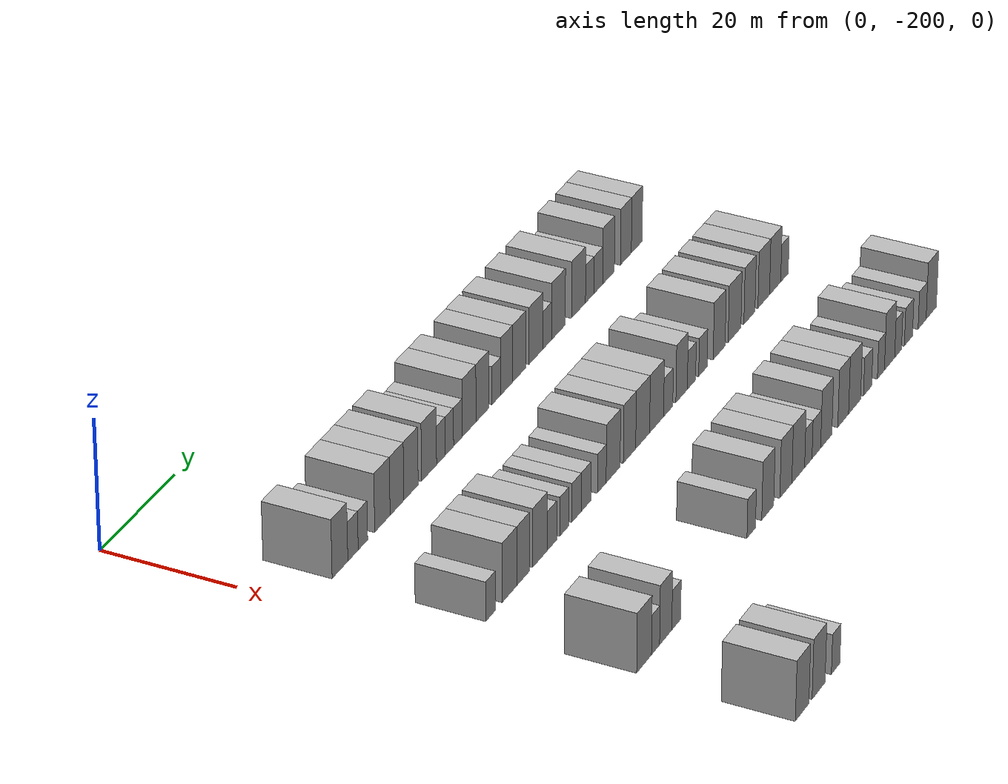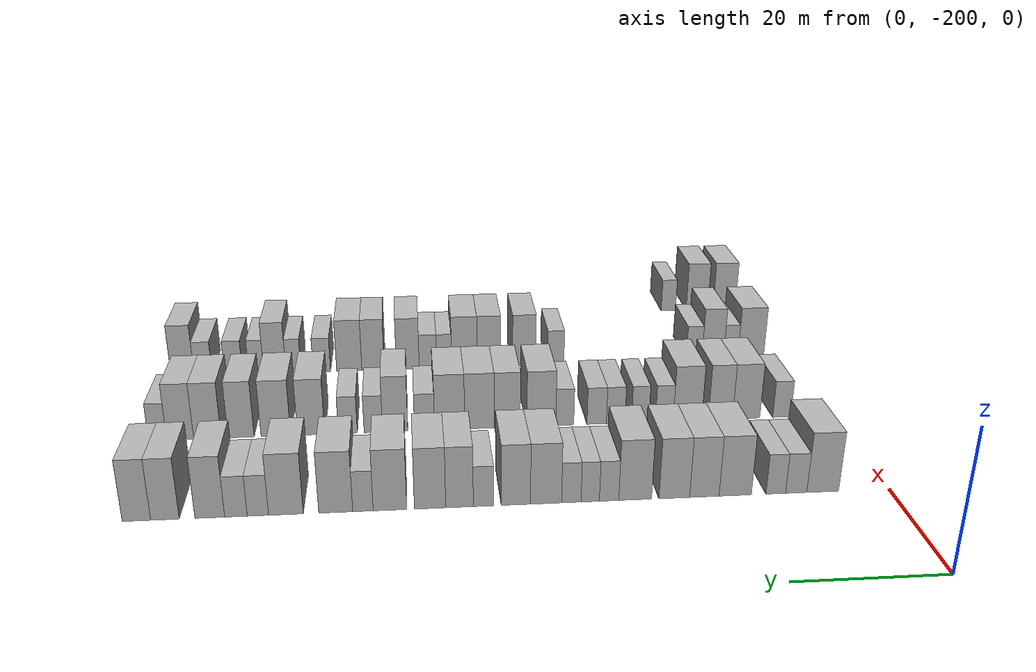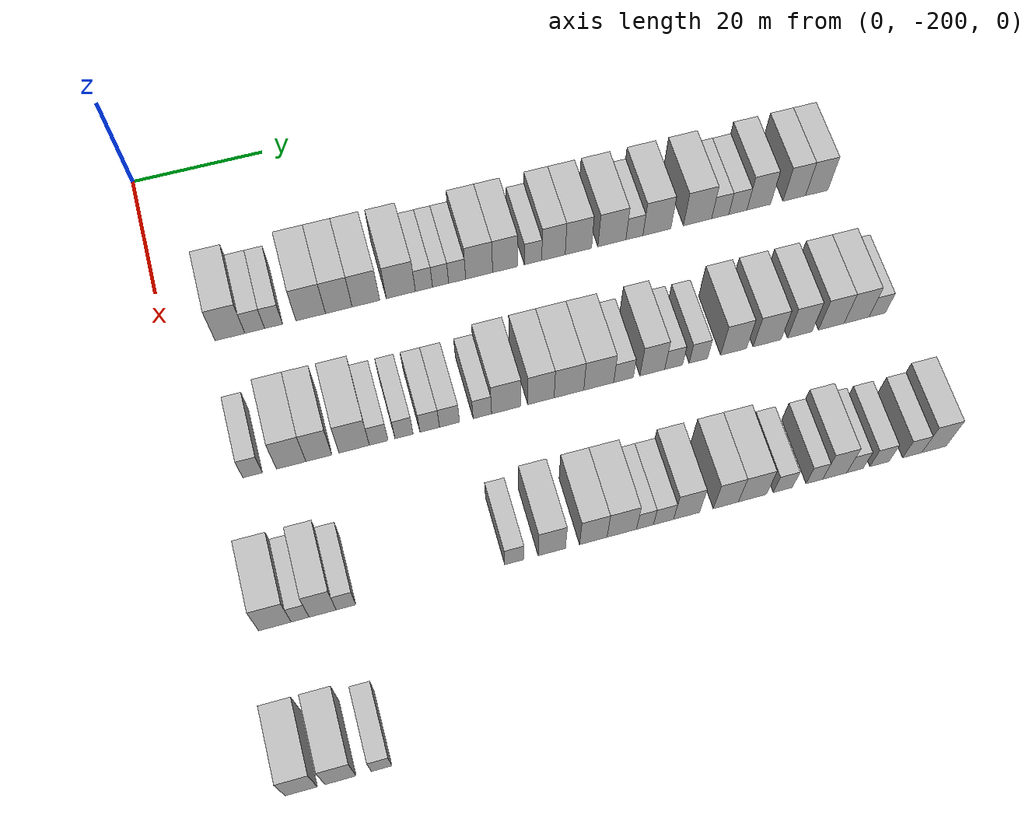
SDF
<sdf version="1.6">
 <world name="default">
  <model name="building_46">
   <static>1</static>
   <pose>25.0000 -190.7838 0 0.000000 0.000000 0.000000</pose>
   <link name="link">
    <pose>0 0 4.50 0 0 0</pose>
    <collision name="collision"><geometry><box><size>10.0000 4.3955 9.0000</size></box></geometry></collision>
    <visual name="visual">
     <cast_shadows>0</cast_shadows>
     <geometry><box><size>10.0000 4.3955 9.0000</size></box></geometry>
     <material>
      <script>
       <uri>model://HANNAS_wall/materials/scripts</uri>
       <uri>model://HANNAS_wall/materials/textures</uri>
       <name>vrc/HANNAS_wall</name>
      </script>
     </material>
    </visual>
   </link>
  </model>
  <model name="building_47">
   <static>1</static>
   <pose>25.0000 -187.1264 0 0.000000 0.000000 0.000000</pose>
   <link name="link">
    <pose>0 0 3.00 0 0 0</pose>
    <collision name="collision"><geometry><box><size>10.0000 2.9193 6.0000</size></box></geometry></collision>
    <visual name="visual">
     <cast_shadows>0</cast_shadows>
     <geometry><box><size>10.0000 2.9193 6.0000</size></box></geometry>
     <material>
      <script>
       <uri>model://HANNAS_wall/materials/scripts</uri>
       <uri>model://HANNAS_wall/materials/textures</uri>
       <name>vrc/HANNAS_wall</name>
      </script>
     </material>
    </visual>
   </link>
  </model>
  <model name="building_48">
   <static>1</static>
   <pose>25.0000 -184.3268 0 0.000000 0.000000 0.000000</pose>
   <link name="link">
    <pose>0 0 3.00 0 0 0</pose>
    <collision name="collision"><geometry><box><size>10.0000 2.6798 6.0000</size></box></geometry></collision>
    <visual name="visual">
     <cast_shadows>0</cast_shadows>
     <geometry><box><size>10.0000 2.6798 6.0000</size></box></geometry>
     <material>
      <script>
       <uri>model://HANNAS_wall/materials/scripts</uri>
       <uri>model://HANNAS_wall/materials/textures</uri>
       <name>vrc/HANNAS_wall</name>
      </script>
     </material>
    </visual>
   </link>
  </model>
  <model name="building_49">
   <static>1</static>
   <pose>25.0000 -178.7827 0 0.000000 0.000000 0.000000</pose>
   <link name="link">
    <pose>0 0 4.50 0 0 0</pose>
    <collision name="collision"><geometry><box><size>10.0000 4.4084 9.0000</size></box></geometry></collision>
    <visual name="visual">
     <cast_shadows>0</cast_shadows>
     <geometry><box><size>10.0000 4.4084 9.0000</size></box></geometry>
     <material>
      <script>
       <uri>model://HANNAS_wall/materials/scripts</uri>
       <uri>model://HANNAS_wall/materials/textures</uri>
       <name>vrc/HANNAS_wall</name>
      </script>
     </material>
    </visual>
   </link>
  </model>
  <model name="building_50">
   <static>1</static>
   <pose>25.0000 -174.5790 0 0.000000 0.000000 0.000000</pose>
   <link name="link">
    <pose>0 0 4.50 0 0 0</pose>
    <collision name="collision"><geometry><box><size>10.0000 3.9990 9.0000</size></box></geometry></collision>
    <visual name="visual">
     <cast_shadows>0</cast_shadows>
     <geometry><box><size>10.0000 3.9990 9.0000</size></box></geometry>
     <material>
      <script>
       <uri>model://HANNAS_wall/materials/scripts</uri>
       <uri>model://HANNAS_wall/materials/textures</uri>
       <name>vrc/HANNAS_wall</name>
      </script>
     </material>
    </visual>
   </link>
  </model>
  <model name="building_51">
   <static>1</static>
   <pose>25.0000 -170.5038 0 0.000000 0.000000 0.000000</pose>
   <link name="link">
    <pose>0 0 4.50 0 0 0</pose>
    <collision name="collision"><geometry><box><size>10.0000 4.1513 9.0000</size></box></geometry></collision>
    <visual name="visual">
     <cast_shadows>0</cast_shadows>
     <geometry><box><size>10.0000 4.1513 9.0000</size></box></geometry>
     <material>
      <script>
       <uri>model://HANNAS_wall/materials/scripts</uri>
       <uri>model://HANNAS_wall/materials/textures</uri>
       <name>vrc/HANNAS_wall</name>
      </script>
     </material>
    </visual>
   </link>
  </model>
  <model name="building_52">
   <static>1</static>
   <pose>25.0000 -165.2198 0 0.000000 0.000000 0.000000</pose>
   <link name="link">
    <pose>0 0 4.50 0 0 0</pose>
    <collision name="collision"><geometry><box><size>10.0000 4.4166 9.0000</size></box></geometry></collision>
    <visual name="visual">
     <cast_shadows>0</cast_shadows>
     <geometry><box><size>10.0000 4.4166 9.0000</size></box></geometry>
     <material>
      <script>
       <uri>model://HANNAS_wall/materials/scripts</uri>
       <uri>model://HANNAS_wall/materials/textures</uri>
       <name>vrc/HANNAS_wall</name>
      </script>
     </material>
    </visual>
   </link>
  </model>
  <model name="building_53">
   <static>1</static>
   <pose>25.0000 -161.7086 0 0.000000 0.000000 0.000000</pose>
   <link name="link">
    <pose>0 0 3.00 0 0 0</pose>
    <collision name="collision"><geometry><box><size>10.0000 2.6059 6.0000</size></box></geometry></collision>
    <visual name="visual">
     <cast_shadows>0</cast_shadows>
     <geometry><box><size>10.0000 2.6059 6.0000</size></box></geometry>
     <material>
      <script>
       <uri>model://HANNAS_wall/materials/scripts</uri>
       <uri>model://HANNAS_wall/materials/textures</uri>
       <name>vrc/HANNAS_wall</name>
      </script>
     </material>
    </visual>
   </link>
  </model>
  <model name="building_54">
   <static>1</static>
   <pose>25.0000 -159.1766 0 0.000000 0.000000 0.000000</pose>
   <link name="link">
    <pose>0 0 3.00 0 0 0</pose>
    <collision name="collision"><geometry><box><size>10.0000 2.4581 6.0000</size></box></geometry></collision>
    <visual name="visual">
     <cast_shadows>0</cast_shadows>
     <geometry><box><size>10.0000 2.4581 6.0000</size></box></geometry>
     <material>
      <script>
       <uri>model://HANNAS_wall/materials/scripts</uri>
       <uri>model://HANNAS_wall/materials/textures</uri>
       <name>vrc/HANNAS_wall</name>
      </script>
     </material>
    </visual>
   </link>
  </model>
  <model name="building_55">
   <static>1</static>
   <pose>25.0000 -156.6405 0 0.000000 0.000000 0.000000</pose>
   <link name="link">
    <pose>0 0 3.00 0 0 0</pose>
    <collision name="collision"><geometry><box><size>10.0000 2.6142 6.0000</size></box></geometry></collision>
    <visual name="visual">
     <cast_shadows>0</cast_shadows>
     <geometry><box><size>10.0000 2.6142 6.0000</size></box></geometry>
     <material>
      <script>
       <uri>model://HANNAS_wall/materials/scripts</uri>
       <uri>model://HANNAS_wall/materials/textures</uri>
       <name>vrc/HANNAS_wall</name>
      </script>
     </material>
    </visual>
   </link>
  </model>
  <model name="building_56">
   <static>1</static>
   <pose>25.0000 -153.2643 0 0.000000 0.000000 0.000000</pose>
   <link name="link">
    <pose>0 0 4.50 0 0 0</pose>
    <collision name="collision"><geometry><box><size>10.0000 4.1381 9.0000</size></box></geometry></collision>
    <visual name="visual">
     <cast_shadows>0</cast_shadows>
     <geometry><box><size>10.0000 4.1381 9.0000</size></box></geometry>
     <material>
      <script>
       <uri>model://HANNAS_wall/materials/scripts</uri>
       <uri>model://HANNAS_wall/materials/textures</uri>
       <name>vrc/HANNAS_wall</name>
      </script>
     </material>
    </visual>
   </link>
  </model>
  <model name="building_57">
   <static>1</static>
   <pose>25.0000 -149.2630 0 0.000000 0.000000 0.000000</pose>
   <link name="link">
    <pose>0 0 4.50 0 0 0</pose>
    <collision name="collision"><geometry><box><size>10.0000 3.8646 9.0000</size></box></geometry></collision>
    <visual name="visual">
     <cast_shadows>0</cast_shadows>
     <geometry><box><size>10.0000 3.8646 9.0000</size></box></geometry>
     <material>
      <script>
       <uri>model://HANNAS_wall/materials/scripts</uri>
       <uri>model://HANNAS_wall/materials/textures</uri>
       <name>vrc/HANNAS_wall</name>
      </script>
     </material>
    </visual>
   </link>
  </model>
  <model name="building_58">
   <static>1</static>
   <pose>25.0000 -144.9823 0 0.000000 0.000000 0.000000</pose>
   <link name="link">
    <pose>0 0 3.00 0 0 0</pose>
    <collision name="collision"><geometry><box><size>10.0000 2.6967 6.0000</size></box></geometry></collision>
    <visual name="visual">
     <cast_shadows>0</cast_shadows>
     <geometry><box><size>10.0000 2.6967 6.0000</size></box></geometry>
     <material>
      <script>
       <uri>model://HANNAS_wall/materials/scripts</uri>
       <uri>model://HANNAS_wall/materials/textures</uri>
       <name>vrc/HANNAS_wall</name>
      </script>
     </material>
    </visual>
   </link>
  </model>
  <model name="building_59">
   <static>1</static>
   <pose>25.0000 -141.8142 0 0.000000 0.000000 0.000000</pose>
   <link name="link">
    <pose>0 0 4.50 0 0 0</pose>
    <collision name="collision"><geometry><box><size>10.0000 3.6396 9.0000</size></box></geometry></collision>
    <visual name="visual">
     <cast_shadows>0</cast_shadows>
     <geometry><box><size>10.0000 3.6396 9.0000</size></box></geometry>
     <material>
      <script>
       <uri>model://HANNAS_wall/materials/scripts</uri>
       <uri>model://HANNAS_wall/materials/textures</uri>
       <name>vrc/HANNAS_wall</name>
      </script>
     </material>
    </visual>
   </link>
  </model>
  <model name="building_60">
   <static>1</static>
   <pose>25.0000 -137.9425 0 0.000000 0.000000 0.000000</pose>
   <link name="link">
    <pose>0 0 4.50 0 0 0</pose>
    <collision name="collision"><geometry><box><size>10.0000 4.1037 9.0000</size></box></geometry></collision>
    <visual name="visual">
     <cast_shadows>0</cast_shadows>
     <geometry><box><size>10.0000 4.1037 9.0000</size></box></geometry>
     <material>
      <script>
       <uri>model://HANNAS_wall/materials/scripts</uri>
       <uri>model://HANNAS_wall/materials/textures</uri>
       <name>vrc/HANNAS_wall</name>
      </script>
     </material>
    </visual>
   </link>
  </model>
  <model name="building_61">
   <static>1</static>
   <pose>25.0000 -132.6984 0 0.000000 0.000000 0.000000</pose>
   <link name="link">
    <pose>0 0 4.50 0 0 0</pose>
    <collision name="collision"><geometry><box><size>10.0000 4.3846 9.0000</size></box></geometry></collision>
    <visual name="visual">
     <cast_shadows>0</cast_shadows>
     <geometry><box><size>10.0000 4.3846 9.0000</size></box></geometry>
     <material>
      <script>
       <uri>model://HANNAS_wall/materials/scripts</uri>
       <uri>model://HANNAS_wall/materials/textures</uri>
       <name>vrc/HANNAS_wall</name>
      </script>
     </material>
    </visual>
   </link>
  </model>
  <model name="building_62">
   <static>1</static>
   <pose>25.0000 -129.1732 0 0.000000 0.000000 0.000000</pose>
   <link name="link">
    <pose>0 0 3.00 0 0 0</pose>
    <collision name="collision"><geometry><box><size>10.0000 2.6657 6.0000</size></box></geometry></collision>
    <visual name="visual">
     <cast_shadows>0</cast_shadows>
     <geometry><box><size>10.0000 2.6657 6.0000</size></box></geometry>
     <material>
      <script>
       <uri>model://HANNAS_wall/materials/scripts</uri>
       <uri>model://HANNAS_wall/materials/textures</uri>
       <name>vrc/HANNAS_wall</name>
      </script>
     </material>
    </visual>
   </link>
  </model>
  <model name="building_63">
   <static>1</static>
   <pose>25.0000 -125.6364 0 0.000000 0.000000 0.000000</pose>
   <link name="link">
    <pose>0 0 4.50 0 0 0</pose>
    <collision name="collision"><geometry><box><size>10.0000 4.4079 9.0000</size></box></geometry></collision>
    <visual name="visual">
     <cast_shadows>0</cast_shadows>
     <geometry><box><size>10.0000 4.4079 9.0000</size></box></geometry>
     <material>
      <script>
       <uri>model://HANNAS_wall/materials/scripts</uri>
       <uri>model://HANNAS_wall/materials/textures</uri>
       <name>vrc/HANNAS_wall</name>
      </script>
     </material>
    </visual>
   </link>
  </model>
  <model name="building_64">
   <static>1</static>
   <pose>25.0000 -119.1926 0 0.000000 0.000000 0.000000</pose>
   <link name="link">
    <pose>0 0 4.50 0 0 0</pose>
    <collision name="collision"><geometry><box><size>10.0000 4.4797 9.0000</size></box></geometry></collision>
    <visual name="visual">
     <cast_shadows>0</cast_shadows>
     <geometry><box><size>10.0000 4.4797 9.0000</size></box></geometry>
     <material>
      <script>
       <uri>model://HANNAS_wall/materials/scripts</uri>
       <uri>model://HANNAS_wall/materials/textures</uri>
       <name>vrc/HANNAS_wall</name>
      </script>
     </material>
    </visual>
   </link>
  </model>
  <model name="building_65">
   <static>1</static>
   <pose>25.0000 -115.5849 0 0.000000 0.000000 0.000000</pose>
   <link name="link">
    <pose>0 0 3.00 0 0 0</pose>
    <collision name="collision"><geometry><box><size>10.0000 2.7357 6.0000</size></box></geometry></collision>
    <visual name="visual">
     <cast_shadows>0</cast_shadows>
     <geometry><box><size>10.0000 2.7357 6.0000</size></box></geometry>
     <material>
      <script>
       <uri>model://HANNAS_wall/materials/scripts</uri>
       <uri>model://HANNAS_wall/materials/textures</uri>
       <name>vrc/HANNAS_wall</name>
      </script>
     </material>
    </visual>
   </link>
  </model>
  <model name="building_66">
   <static>1</static>
   <pose>25.0000 -112.7701 0 0.000000 0.000000 0.000000</pose>
   <link name="link">
    <pose>0 0 3.00 0 0 0</pose>
    <collision name="collision"><geometry><box><size>10.0000 2.8938 6.0000</size></box></geometry></collision>
    <visual name="visual">
     <cast_shadows>0</cast_shadows>
     <geometry><box><size>10.0000 2.8938 6.0000</size></box></geometry>
     <material>
      <script>
       <uri>model://HANNAS_wall/materials/scripts</uri>
       <uri>model://HANNAS_wall/materials/textures</uri>
       <name>vrc/HANNAS_wall</name>
      </script>
     </material>
    </visual>
   </link>
  </model>
  <model name="building_67">
   <static>1</static>
   <pose>25.0000 -109.4229 0 0.000000 0.000000 0.000000</pose>
   <link name="link">
    <pose>0 0 4.50 0 0 0</pose>
    <collision name="collision"><geometry><box><size>10.0000 3.8006 9.0000</size></box></geometry></collision>
    <visual name="visual">
     <cast_shadows>0</cast_shadows>
     <geometry><box><size>10.0000 3.8006 9.0000</size></box></geometry>
     <material>
      <script>
       <uri>model://HANNAS_wall/materials/scripts</uri>
       <uri>model://HANNAS_wall/materials/textures</uri>
       <name>vrc/HANNAS_wall</name>
      </script>
     </material>
    </visual>
   </link>
  </model>
  <model name="building_68">
   <static>1</static>
   <pose>25.0000 -103.7081 0 0.000000 0.000000 0.000000</pose>
   <link name="link">
    <pose>0 0 4.50 0 0 0</pose>
    <collision name="collision"><geometry><box><size>10.0000 3.6289 9.0000</size></box></geometry></collision>
    <visual name="visual">
     <cast_shadows>0</cast_shadows>
     <geometry><box><size>10.0000 3.6289 9.0000</size></box></geometry>
     <material>
      <script>
       <uri>model://HANNAS_wall/materials/scripts</uri>
       <uri>model://HANNAS_wall/materials/textures</uri>
       <name>vrc/HANNAS_wall</name>
      </script>
     </material>
    </visual>
   </link>
  </model>
  <model name="building_69">
   <static>1</static>
   <pose>25.0000 -100.0918 0 0.000000 0.000000 0.000000</pose>
   <link name="link">
    <pose>0 0 4.50 0 0 0</pose>
    <collision name="collision"><geometry><box><size>10.0000 3.6039 9.0000</size></box></geometry></collision>
    <visual name="visual">
     <cast_shadows>0</cast_shadows>
     <geometry><box><size>10.0000 3.6039 9.0000</size></box></geometry>
     <material>
      <script>
       <uri>model://HANNAS_wall/materials/scripts</uri>
       <uri>model://HANNAS_wall/materials/textures</uri>
       <name>vrc/HANNAS_wall</name>
      </script>
     </material>
    </visual>
   </link>
  </model>
  <model name="building_239">
   <static>1</static>
   <pose>47.0000 -191.8504 0 0.000000 0.000000 0.000000</pose>
   <link name="link">
    <pose>0 0 3.00 0 0 0</pose>
    <collision name="collision"><geometry><box><size>10.0000 2.7787 6.0000</size></box></geometry></collision>
    <visual name="visual">
     <cast_shadows>0</cast_shadows>
     <geometry><box><size>10.0000 2.7787 6.0000</size></box></geometry>
     <material>
      <script>
       <uri>model://HANNAS_wall/materials/scripts</uri>
       <uri>model://HANNAS_wall/materials/textures</uri>
       <name>vrc/HANNAS_wall</name>
      </script>
     </material>
    </visual>
   </link>
  </model>
  <model name="building_240">
   <static>1</static>
   <pose>47.0000 -186.3586 0 0.000000 0.000000 0.000000</pose>
   <link name="link">
    <pose>0 0 4.50 0 0 0</pose>
    <collision name="collision"><geometry><box><size>10.0000 4.2049 9.0000</size></box></geometry></collision>
    <visual name="visual">
     <cast_shadows>0</cast_shadows>
     <geometry><box><size>10.0000 4.2049 9.0000</size></box></geometry>
     <material>
      <script>
       <uri>model://HANNAS_wall/materials/scripts</uri>
       <uri>model://HANNAS_wall/materials/textures</uri>
       <name>vrc/HANNAS_wall</name>
      </script>
     </material>
    </visual>
   </link>
  </model>
  <model name="building_241">
   <static>1</static>
   <pose>47.0000 -182.3909 0 0.000000 0.000000 0.000000</pose>
   <link name="link">
    <pose>0 0 4.50 0 0 0</pose>
    <collision name="collision"><geometry><box><size>10.0000 3.7305 9.0000</size></box></geometry></collision>
    <visual name="visual">
     <cast_shadows>0</cast_shadows>
     <geometry><box><size>10.0000 3.7305 9.0000</size></box></geometry>
     <material>
      <script>
       <uri>model://HANNAS_wall/materials/scripts</uri>
       <uri>model://HANNAS_wall/materials/textures</uri>
       <name>vrc/HANNAS_wall</name>
      </script>
     </material>
    </visual>
   </link>
  </model>
  <model name="building_242">
   <static>1</static>
   <pose>47.0000 -177.3343 0 0.000000 0.000000 0.000000</pose>
   <link name="link">
    <pose>0 0 4.50 0 0 0</pose>
    <collision name="collision"><geometry><box><size>10.0000 4.3827 9.0000</size></box></geometry></collision>
    <visual name="visual">
     <cast_shadows>0</cast_shadows>
     <geometry><box><size>10.0000 4.3827 9.0000</size></box></geometry>
     <material>
      <script>
       <uri>model://HANNAS_wall/materials/scripts</uri>
       <uri>model://HANNAS_wall/materials/textures</uri>
       <name>vrc/HANNAS_wall</name>
      </script>
     </material>
    </visual>
   </link>
  </model>
  <model name="building_243">
   <static>1</static>
   <pose>47.0000 -173.7871 0 0.000000 0.000000 0.000000</pose>
   <link name="link">
    <pose>0 0 3.00 0 0 0</pose>
    <collision name="collision"><geometry><box><size>10.0000 2.7116 6.0000</size></box></geometry></collision>
    <visual name="visual">
     <cast_shadows>0</cast_shadows>
     <geometry><box><size>10.0000 2.7116 6.0000</size></box></geometry>
     <material>
      <script>
       <uri>model://HANNAS_wall/materials/scripts</uri>
       <uri>model://HANNAS_wall/materials/textures</uri>
       <name>vrc/HANNAS_wall</name>
      </script>
     </material>
    </visual>
   </link>
  </model>
  <model name="building_244">
   <static>1</static>
   <pose>47.0000 -170.1099 0 0.000000 0.000000 0.000000</pose>
   <link name="link">
    <pose>0 0 3.00 0 0 0</pose>
    <collision name="collision"><geometry><box><size>10.0000 2.6427 6.0000</size></box></geometry></collision>
    <visual name="visual">
     <cast_shadows>0</cast_shadows>
     <geometry><box><size>10.0000 2.6427 6.0000</size></box></geometry>
     <material>
      <script>
       <uri>model://HANNAS_wall/materials/scripts</uri>
       <uri>model://HANNAS_wall/materials/textures</uri>
       <name>vrc/HANNAS_wall</name>
      </script>
     </material>
    </visual>
   </link>
  </model>
  <model name="building_245">
   <static>1</static>
   <pose>47.0000 -166.3771 0 0.000000 0.000000 0.000000</pose>
   <link name="link">
    <pose>0 0 3.00 0 0 0</pose>
    <collision name="collision"><geometry><box><size>10.0000 2.8229 6.0000</size></box></geometry></collision>
    <visual name="visual">
     <cast_shadows>0</cast_shadows>
     <geometry><box><size>10.0000 2.8229 6.0000</size></box></geometry>
     <material>
      <script>
       <uri>model://HANNAS_wall/materials/scripts</uri>
       <uri>model://HANNAS_wall/materials/textures</uri>
       <name>vrc/HANNAS_wall</name>
      </script>
     </material>
    </visual>
   </link>
  </model>
  <model name="building_246">
   <static>1</static>
   <pose>47.0000 -163.4967 0 0.000000 0.000000 0.000000</pose>
   <link name="link">
    <pose>0 0 3.00 0 0 0</pose>
    <collision name="collision"><geometry><box><size>10.0000 2.9380 6.0000</size></box></geometry></collision>
    <visual name="visual">
     <cast_shadows>0</cast_shadows>
     <geometry><box><size>10.0000 2.9380 6.0000</size></box></geometry>
     <material>
      <script>
       <uri>model://HANNAS_wall/materials/scripts</uri>
       <uri>model://HANNAS_wall/materials/textures</uri>
       <name>vrc/HANNAS_wall</name>
      </script>
     </material>
    </visual>
   </link>
  </model>
  <model name="building_247">
   <static>1</static>
   <pose>47.0000 -158.6736 0 0.000000 0.000000 0.000000</pose>
   <link name="link">
    <pose>0 0 3.00 0 0 0</pose>
    <collision name="collision"><geometry><box><size>10.0000 2.7082 6.0000</size></box></geometry></collision>
    <visual name="visual">
     <cast_shadows>0</cast_shadows>
     <geometry><box><size>10.0000 2.7082 6.0000</size></box></geometry>
     <material>
      <script>
       <uri>model://HANNAS_wall/materials/scripts</uri>
       <uri>model://HANNAS_wall/materials/textures</uri>
       <name>vrc/HANNAS_wall</name>
      </script>
     </material>
    </visual>
   </link>
  </model>
  <model name="building_248">
   <static>1</static>
   <pose>47.0000 -155.1468 0 0.000000 0.000000 0.000000</pose>
   <link name="link">
    <pose>0 0 4.50 0 0 0</pose>
    <collision name="collision"><geometry><box><size>10.0000 4.3454 9.0000</size></box></geometry></collision>
    <visual name="visual">
     <cast_shadows>0</cast_shadows>
     <geometry><box><size>10.0000 4.3454 9.0000</size></box></geometry>
     <material>
      <script>
       <uri>model://HANNAS_wall/materials/scripts</uri>
       <uri>model://HANNAS_wall/materials/textures</uri>
       <name>vrc/HANNAS_wall</name>
      </script>
     </material>
    </visual>
   </link>
  </model>
  <model name="building_249">
   <static>1</static>
   <pose>47.0000 -150.0235 0 0.000000 0.000000 0.000000</pose>
   <link name="link">
    <pose>0 0 4.50 0 0 0</pose>
    <collision name="collision"><geometry><box><size>10.0000 3.9013 9.0000</size></box></geometry></collision>
    <visual name="visual">
     <cast_shadows>0</cast_shadows>
     <geometry><box><size>10.0000 3.9013 9.0000</size></box></geometry>
     <material>
      <script>
       <uri>model://HANNAS_wall/materials/scripts</uri>
       <uri>model://HANNAS_wall/materials/textures</uri>
       <name>vrc/HANNAS_wall</name>
      </script>
     </material>
    </visual>
   </link>
  </model>
  <model name="building_250">
   <static>1</static>
   <pose>47.0000 -145.8691 0 0.000000 0.000000 0.000000</pose>
   <link name="link">
    <pose>0 0 4.50 0 0 0</pose>
    <collision name="collision"><geometry><box><size>10.0000 4.4077 9.0000</size></box></geometry></collision>
    <visual name="visual">
     <cast_shadows>0</cast_shadows>
     <geometry><box><size>10.0000 4.4077 9.0000</size></box></geometry>
     <material>
      <script>
       <uri>model://HANNAS_wall/materials/scripts</uri>
       <uri>model://HANNAS_wall/materials/textures</uri>
       <name>vrc/HANNAS_wall</name>
      </script>
     </material>
    </visual>
   </link>
  </model>
  <model name="building_251">
   <static>1</static>
   <pose>47.0000 -141.4261 0 0.000000 0.000000 0.000000</pose>
   <link name="link">
    <pose>0 0 4.50 0 0 0</pose>
    <collision name="collision"><geometry><box><size>10.0000 4.4782 9.0000</size></box></geometry></collision>
    <visual name="visual">
     <cast_shadows>0</cast_shadows>
     <geometry><box><size>10.0000 4.4782 9.0000</size></box></geometry>
     <material>
      <script>
       <uri>model://HANNAS_wall/materials/scripts</uri>
       <uri>model://HANNAS_wall/materials/textures</uri>
       <name>vrc/HANNAS_wall</name>
      </script>
     </material>
    </visual>
   </link>
  </model>
  <model name="building_252">
   <static>1</static>
   <pose>47.0000 -137.7105 0 0.000000 0.000000 0.000000</pose>
   <link name="link">
    <pose>0 0 3.00 0 0 0</pose>
    <collision name="collision"><geometry><box><size>10.0000 2.9530 6.0000</size></box></geometry></collision>
    <visual name="visual">
     <cast_shadows>0</cast_shadows>
     <geometry><box><size>10.0000 2.9530 6.0000</size></box></geometry>
     <material>
      <script>
       <uri>model://HANNAS_wall/materials/scripts</uri>
       <uri>model://HANNAS_wall/materials/textures</uri>
       <name>vrc/HANNAS_wall</name>
      </script>
     </material>
    </visual>
   </link>
  </model>
  <model name="building_253">
   <static>1</static>
   <pose>47.0000 -133.3679 0 0.000000 0.000000 0.000000</pose>
   <link name="link">
    <pose>0 0 4.50 0 0 0</pose>
    <collision name="collision"><geometry><box><size>10.0000 3.7323 9.0000</size></box></geometry></collision>
    <visual name="visual">
     <cast_shadows>0</cast_shadows>
     <geometry><box><size>10.0000 3.7323 9.0000</size></box></geometry>
     <material>
      <script>
       <uri>model://HANNAS_wall/materials/scripts</uri>
       <uri>model://HANNAS_wall/materials/textures</uri>
       <name>vrc/HANNAS_wall</name>
      </script>
     </material>
    </visual>
   </link>
  </model>
  <model name="building_254">
   <static>1</static>
   <pose>47.0000 -130.1482 0 0.000000 0.000000 0.000000</pose>
   <link name="link">
    <pose>0 0 3.00 0 0 0</pose>
    <collision name="collision"><geometry><box><size>10.0000 2.7070 6.0000</size></box></geometry></collision>
    <visual name="visual">
     <cast_shadows>0</cast_shadows>
     <geometry><box><size>10.0000 2.7070 6.0000</size></box></geometry>
     <material>
      <script>
       <uri>model://HANNAS_wall/materials/scripts</uri>
       <uri>model://HANNAS_wall/materials/textures</uri>
       <name>vrc/HANNAS_wall</name>
      </script>
     </material>
    </visual>
   </link>
  </model>
  <model name="building_255">
   <static>1</static>
   <pose>47.0000 -126.4017 0 0.000000 0.000000 0.000000</pose>
   <link name="link">
    <pose>0 0 3.00 0 0 0</pose>
    <collision name="collision"><geometry><box><size>10.0000 2.7861 6.0000</size></box></geometry></collision>
    <visual name="visual">
     <cast_shadows>0</cast_shadows>
     <geometry><box><size>10.0000 2.7861 6.0000</size></box></geometry>
     <material>
      <script>
       <uri>model://HANNAS_wall/materials/scripts</uri>
       <uri>model://HANNAS_wall/materials/textures</uri>
       <name>vrc/HANNAS_wall</name>
      </script>
     </material>
    </visual>
   </link>
  </model>
  <model name="building_256">
   <static>1</static>
   <pose>47.0000 -121.0189 0 0.000000 0.000000 0.000000</pose>
   <link name="link">
    <pose>0 0 4.50 0 0 0</pose>
    <collision name="collision"><geometry><box><size>10.0000 3.9794 9.0000</size></box></geometry></collision>
    <visual name="visual">
     <cast_shadows>0</cast_shadows>
     <geometry><box><size>10.0000 3.9794 9.0000</size></box></geometry>
     <material>
      <script>
       <uri>model://HANNAS_wall/materials/scripts</uri>
       <uri>model://HANNAS_wall/materials/textures</uri>
       <name>vrc/HANNAS_wall</name>
      </script>
     </material>
    </visual>
   </link>
  </model>
  <model name="building_257">
   <static>1</static>
   <pose>47.0000 -115.8772 0 0.000000 0.000000 0.000000</pose>
   <link name="link">
    <pose>0 0 4.50 0 0 0</pose>
    <collision name="collision"><geometry><box><size>10.0000 4.3039 9.0000</size></box></geometry></collision>
    <visual name="visual">
     <cast_shadows>0</cast_shadows>
     <geometry><box><size>10.0000 4.3039 9.0000</size></box></geometry>
     <material>
      <script>
       <uri>model://HANNAS_wall/materials/scripts</uri>
       <uri>model://HANNAS_wall/materials/textures</uri>
       <name>vrc/HANNAS_wall</name>
      </script>
     </material>
    </visual>
   </link>
  </model>
  <model name="building_258">
   <static>1</static>
   <pose>47.0000 -110.8382 0 0.000000 0.000000 0.000000</pose>
   <link name="link">
    <pose>0 0 4.50 0 0 0</pose>
    <collision name="collision"><geometry><box><size>10.0000 3.7742 9.0000</size></box></geometry></collision>
    <visual name="visual">
     <cast_shadows>0</cast_shadows>
     <geometry><box><size>10.0000 3.7742 9.0000</size></box></geometry>
     <material>
      <script>
       <uri>model://HANNAS_wall/materials/scripts</uri>
       <uri>model://HANNAS_wall/materials/textures</uri>
       <name>vrc/HANNAS_wall</name>
      </script>
     </material>
    </visual>
   </link>
  </model>
  <model name="building_259">
   <static>1</static>
   <pose>47.0000 -105.9641 0 0.000000 0.000000 0.000000</pose>
   <link name="link">
    <pose>0 0 4.50 0 0 0</pose>
    <collision name="collision"><geometry><box><size>10.0000 3.9741 9.0000</size></box></geometry></collision>
    <visual name="visual">
     <cast_shadows>0</cast_shadows>
     <geometry><box><size>10.0000 3.9741 9.0000</size></box></geometry>
     <material>
      <script>
       <uri>model://HANNAS_wall/materials/scripts</uri>
       <uri>model://HANNAS_wall/materials/textures</uri>
       <name>vrc/HANNAS_wall</name>
      </script>
     </material>
    </visual>
   </link>
  </model>
  <model name="building_260">
   <static>1</static>
   <pose>47.0000 -102.0428 0 0.000000 0.000000 0.000000</pose>
   <link name="link">
    <pose>0 0 4.50 0 0 0</pose>
    <collision name="collision"><geometry><box><size>10.0000 3.8685 9.0000</size></box></geometry></collision>
    <visual name="visual">
     <cast_shadows>0</cast_shadows>
     <geometry><box><size>10.0000 3.8685 9.0000</size></box></geometry>
     <material>
      <script>
       <uri>model://HANNAS_wall/materials/scripts</uri>
       <uri>model://HANNAS_wall/materials/textures</uri>
       <name>vrc/HANNAS_wall</name>
      </script>
     </material>
    </visual>
   </link>
  </model>
  <model name="building_261">
   <static>1</static>
   <pose>47.0000 -98.8056 0 0.000000 0.000000 0.000000</pose>
   <link name="link">
    <pose>0 0 3.00 0 0 0</pose>
    <collision name="collision"><geometry><box><size>10.0000 2.6057 6.0000</size></box></geometry></collision>
    <visual name="visual">
     <cast_shadows>0</cast_shadows>
     <geometry><box><size>10.0000 2.6057 6.0000</size></box></geometry>
     <material>
      <script>
       <uri>model://HANNAS_wall/materials/scripts</uri>
       <uri>model://HANNAS_wall/materials/textures</uri>
       <name>vrc/HANNAS_wall</name>
      </script>
     </material>
    </visual>
   </link>
  </model>
  <model name="building_422">
   <static>1</static>
   <pose>69.0000 -193.2172 0 0.000000 0.000000 0.000000</pose>
   <link name="link">
    <pose>0 0 4.50 0 0 0</pose>
    <collision name="collision"><geometry><box><size>10.0000 4.4302 9.0000</size></box></geometry></collision>
    <visual name="visual">
     <cast_shadows>0</cast_shadows>
     <geometry><box><size>10.0000 4.4302 9.0000</size></box></geometry>
     <material>
      <script>
       <uri>model://HANNAS_wall/materials/scripts</uri>
       <uri>model://HANNAS_wall/materials/textures</uri>
       <name>vrc/HANNAS_wall</name>
      </script>
     </material>
    </visual>
   </link>
  </model>
  <model name="building_423">
   <static>1</static>
   <pose>69.0000 -189.7822 0 0.000000 0.000000 0.000000</pose>
   <link name="link">
    <pose>0 0 3.00 0 0 0</pose>
    <collision name="collision"><geometry><box><size>10.0000 2.4398 6.0000</size></box></geometry></collision>
    <visual name="visual">
     <cast_shadows>0</cast_shadows>
     <geometry><box><size>10.0000 2.4398 6.0000</size></box></geometry>
     <material>
      <script>
       <uri>model://HANNAS_wall/materials/scripts</uri>
       <uri>model://HANNAS_wall/materials/textures</uri>
       <name>vrc/HANNAS_wall</name>
      </script>
     </material>
    </visual>
   </link>
  </model>
  <model name="building_424">
   <static>1</static>
   <pose>69.0000 -186.7076 0 0.000000 0.000000 0.000000</pose>
   <link name="link">
    <pose>0 0 4.50 0 0 0</pose>
    <collision name="collision"><geometry><box><size>10.0000 3.7093 9.0000</size></box></geometry></collision>
    <visual name="visual">
     <cast_shadows>0</cast_shadows>
     <geometry><box><size>10.0000 3.7093 9.0000</size></box></geometry>
     <material>
      <script>
       <uri>model://HANNAS_wall/materials/scripts</uri>
       <uri>model://HANNAS_wall/materials/textures</uri>
       <name>vrc/HANNAS_wall</name>
      </script>
     </material>
    </visual>
   </link>
  </model>
  <model name="building_425">
   <static>1</static>
   <pose>69.0000 -183.5037 0 0.000000 0.000000 0.000000</pose>
   <link name="link">
    <pose>0 0 3.00 0 0 0</pose>
    <collision name="collision"><geometry><box><size>10.0000 2.6984 6.0000</size></box></geometry></collision>
    <visual name="visual">
     <cast_shadows>0</cast_shadows>
     <geometry><box><size>10.0000 2.6984 6.0000</size></box></geometry>
     <material>
      <script>
       <uri>model://HANNAS_wall/materials/scripts</uri>
       <uri>model://HANNAS_wall/materials/textures</uri>
       <name>vrc/HANNAS_wall</name>
      </script>
     </material>
    </visual>
   </link>
  </model>
  <model name="building_426">
   <static>1</static>
   <pose>69.0000 -160.0632 0 0.000000 0.000000 0.000000</pose>
   <link name="link">
    <pose>0 0 3.00 0 0 0</pose>
    <collision name="collision"><geometry><box><size>10.0000 2.7276 6.0000</size></box></geometry></collision>
    <visual name="visual">
     <cast_shadows>0</cast_shadows>
     <geometry><box><size>10.0000 2.7276 6.0000</size></box></geometry>
     <material>
      <script>
       <uri>model://HANNAS_wall/materials/scripts</uri>
       <uri>model://HANNAS_wall/materials/textures</uri>
       <name>vrc/HANNAS_wall</name>
      </script>
     </material>
    </visual>
   </link>
  </model>
  <model name="building_427">
   <static>1</static>
   <pose>69.0000 -154.7624 0 0.000000 0.000000 0.000000</pose>
   <link name="link">
    <pose>0 0 4.50 0 0 0</pose>
    <collision name="collision"><geometry><box><size>10.0000 3.8740 9.0000</size></box></geometry></collision>
    <visual name="visual">
     <cast_shadows>0</cast_shadows>
     <geometry><box><size>10.0000 3.8740 9.0000</size></box></geometry>
     <material>
      <script>
       <uri>model://HANNAS_wall/materials/scripts</uri>
       <uri>model://HANNAS_wall/materials/textures</uri>
       <name>vrc/HANNAS_wall</name>
      </script>
     </material>
    </visual>
   </link>
  </model>
  <model name="building_428">
   <static>1</static>
   <pose>69.0000 -148.8626 0 0.000000 0.000000 0.000000</pose>
   <link name="link">
    <pose>0 0 4.50 0 0 0</pose>
    <collision name="collision"><geometry><box><size>10.0000 3.9256 9.0000</size></box></geometry></collision>
    <visual name="visual">
     <cast_shadows>0</cast_shadows>
     <geometry><box><size>10.0000 3.9256 9.0000</size></box></geometry>
     <material>
      <script>
       <uri>model://HANNAS_wall/materials/scripts</uri>
       <uri>model://HANNAS_wall/materials/textures</uri>
       <name>vrc/HANNAS_wall</name>
      </script>
     </material>
    </visual>
   </link>
  </model>
  <model name="building_429">
   <static>1</static>
   <pose>69.0000 -144.7860 0 0.000000 0.000000 0.000000</pose>
   <link name="link">
    <pose>0 0 4.50 0 0 0</pose>
    <collision name="collision"><geometry><box><size>10.0000 4.2276 9.0000</size></box></geometry></collision>
    <visual name="visual">
     <cast_shadows>0</cast_shadows>
     <geometry><box><size>10.0000 4.2276 9.0000</size></box></geometry>
     <material>
      <script>
       <uri>model://HANNAS_wall/materials/scripts</uri>
       <uri>model://HANNAS_wall/materials/textures</uri>
       <name>vrc/HANNAS_wall</name>
      </script>
     </material>
    </visual>
   </link>
  </model>
  <model name="building_430">
   <static>1</static>
   <pose>69.0000 -141.4428 0 0.000000 0.000000 0.000000</pose>
   <link name="link">
    <pose>0 0 3.00 0 0 0</pose>
    <collision name="collision"><geometry><box><size>10.0000 2.4588 6.0000</size></box></geometry></collision>
    <visual name="visual">
     <cast_shadows>0</cast_shadows>
     <geometry><box><size>10.0000 2.4588 6.0000</size></box></geometry>
     <material>
      <script>
       <uri>model://HANNAS_wall/materials/scripts</uri>
       <uri>model://HANNAS_wall/materials/textures</uri>
       <name>vrc/HANNAS_wall</name>
      </script>
     </material>
    </visual>
   </link>
  </model>
  <model name="building_431">
   <static>1</static>
   <pose>69.0000 -138.7727 0 0.000000 0.000000 0.000000</pose>
   <link name="link">
    <pose>0 0 3.00 0 0 0</pose>
    <collision name="collision"><geometry><box><size>10.0000 2.8813 6.0000</size></box></geometry></collision>
    <visual name="visual">
     <cast_shadows>0</cast_shadows>
     <geometry><box><size>10.0000 2.8813 6.0000</size></box></geometry>
     <material>
      <script>
       <uri>model://HANNAS_wall/materials/scripts</uri>
       <uri>model://HANNAS_wall/materials/textures</uri>
       <name>vrc/HANNAS_wall</name>
      </script>
     </material>
    </visual>
   </link>
  </model>
  <model name="building_432">
   <static>1</static>
   <pose>69.0000 -135.4466 0 0.000000 0.000000 0.000000</pose>
   <link name="link">
    <pose>0 0 4.50 0 0 0</pose>
    <collision name="collision"><geometry><box><size>10.0000 3.7709 9.0000</size></box></geometry></collision>
    <visual name="visual">
     <cast_shadows>0</cast_shadows>
     <geometry><box><size>10.0000 3.7709 9.0000</size></box></geometry>
     <material>
      <script>
       <uri>model://HANNAS_wall/materials/scripts</uri>
       <uri>model://HANNAS_wall/materials/textures</uri>
       <name>vrc/HANNAS_wall</name>
      </script>
     </material>
    </visual>
   </link>
  </model>
  <model name="building_433">
   <static>1</static>
   <pose>69.0000 -129.7238 0 0.000000 0.000000 0.000000</pose>
   <link name="link">
    <pose>0 0 4.50 0 0 0</pose>
    <collision name="collision"><geometry><box><size>10.0000 3.6749 9.0000</size></box></geometry></collision>
    <visual name="visual">
     <cast_shadows>0</cast_shadows>
     <geometry><box><size>10.0000 3.6749 9.0000</size></box></geometry>
     <material>
      <script>
       <uri>model://HANNAS_wall/materials/scripts</uri>
       <uri>model://HANNAS_wall/materials/textures</uri>
       <name>vrc/HANNAS_wall</name>
      </script>
     </material>
    </visual>
   </link>
  </model>
  <model name="building_434">
   <static>1</static>
   <pose>69.0000 -125.8251 0 0.000000 0.000000 0.000000</pose>
   <link name="link">
    <pose>0 0 4.50 0 0 0</pose>
    <collision name="collision"><geometry><box><size>10.0000 4.1226 9.0000</size></box></geometry></collision>
    <visual name="visual">
     <cast_shadows>0</cast_shadows>
     <geometry><box><size>10.0000 4.1226 9.0000</size></box></geometry>
     <material>
      <script>
       <uri>model://HANNAS_wall/materials/scripts</uri>
       <uri>model://HANNAS_wall/materials/textures</uri>
       <name>vrc/HANNAS_wall</name>
      </script>
     </material>
    </visual>
   </link>
  </model>
  <model name="building_435">
   <static>1</static>
   <pose>69.0000 -121.3529 0 0.000000 0.000000 0.000000</pose>
   <link name="link">
    <pose>0 0 3.00 0 0 0</pose>
    <collision name="collision"><geometry><box><size>10.0000 2.8217 6.0000</size></box></geometry></collision>
    <visual name="visual">
     <cast_shadows>0</cast_shadows>
     <geometry><box><size>10.0000 2.8217 6.0000</size></box></geometry>
     <material>
      <script>
       <uri>model://HANNAS_wall/materials/scripts</uri>
       <uri>model://HANNAS_wall/materials/textures</uri>
       <name>vrc/HANNAS_wall</name>
      </script>
     </material>
    </visual>
   </link>
  </model>
  <model name="building_436">
   <static>1</static>
   <pose>69.0000 -116.7159 0 0.000000 0.000000 0.000000</pose>
   <link name="link">
    <pose>0 0 3.00 0 0 0</pose>
    <collision name="collision"><geometry><box><size>10.0000 2.4524 6.0000</size></box></geometry></collision>
    <visual name="visual">
     <cast_shadows>0</cast_shadows>
     <geometry><box><size>10.0000 2.4524 6.0000</size></box></geometry>
     <material>
      <script>
       <uri>model://HANNAS_wall/materials/scripts</uri>
       <uri>model://HANNAS_wall/materials/textures</uri>
       <name>vrc/HANNAS_wall</name>
      </script>
     </material>
    </visual>
   </link>
  </model>
  <model name="building_437">
   <static>1</static>
   <pose>69.0000 -113.6880 0 0.000000 0.000000 0.000000</pose>
   <link name="link">
    <pose>0 0 4.50 0 0 0</pose>
    <collision name="collision"><geometry><box><size>10.0000 3.6035 9.0000</size></box></geometry></collision>
    <visual name="visual">
     <cast_shadows>0</cast_shadows>
     <geometry><box><size>10.0000 3.6035 9.0000</size></box></geometry>
     <material>
      <script>
       <uri>model://HANNAS_wall/materials/scripts</uri>
       <uri>model://HANNAS_wall/materials/textures</uri>
       <name>vrc/HANNAS_wall</name>
      </script>
     </material>
    </visual>
   </link>
  </model>
  <model name="building_438">
   <static>1</static>
   <pose>69.0000 -110.6738 0 0.000000 0.000000 0.000000</pose>
   <link name="link">
    <pose>0 0 3.00 0 0 0</pose>
    <collision name="collision"><geometry><box><size>10.0000 2.4248 6.0000</size></box></geometry></collision>
    <visual name="visual">
     <cast_shadows>0</cast_shadows>
     <geometry><box><size>10.0000 2.4248 6.0000</size></box></geometry>
     <material>
      <script>
       <uri>model://HANNAS_wall/materials/scripts</uri>
       <uri>model://HANNAS_wall/materials/textures</uri>
       <name>vrc/HANNAS_wall</name>
      </script>
     </material>
    </visual>
   </link>
  </model>
  <model name="building_439">
   <static>1</static>
   <pose>69.0000 -107.0126 0 0.000000 0.000000 0.000000</pose>
   <link name="link">
    <pose>0 0 3.00 0 0 0</pose>
    <collision name="collision"><geometry><box><size>10.0000 2.8976 6.0000</size></box></geometry></collision>
    <visual name="visual">
     <cast_shadows>0</cast_shadows>
     <geometry><box><size>10.0000 2.8976 6.0000</size></box></geometry>
     <material>
      <script>
       <uri>model://HANNAS_wall/materials/scripts</uri>
       <uri>model://HANNAS_wall/materials/textures</uri>
       <name>vrc/HANNAS_wall</name>
      </script>
     </material>
    </visual>
   </link>
  </model>
  <model name="building_440">
   <static>1</static>
   <pose>69.0000 -102.1213 0 0.000000 0.000000 0.000000</pose>
   <link name="link">
    <pose>0 0 3.00 0 0 0</pose>
    <collision name="collision"><geometry><box><size>10.0000 2.8850 6.0000</size></box></geometry></collision>
    <visual name="visual">
     <cast_shadows>0</cast_shadows>
     <geometry><box><size>10.0000 2.8850 6.0000</size></box></geometry>
     <material>
      <script>
       <uri>model://HANNAS_wall/materials/scripts</uri>
       <uri>model://HANNAS_wall/materials/textures</uri>
       <name>vrc/HANNAS_wall</name>
      </script>
     </material>
    </visual>
   </link>
  </model>
  <model name="building_441">
   <static>1</static>
   <pose>69.0000 -98.8300 0 0.000000 0.000000 0.000000</pose>
   <link name="link">
    <pose>0 0 4.50 0 0 0</pose>
    <collision name="collision"><geometry><box><size>10.0000 3.6975 9.0000</size></box></geometry></collision>
    <visual name="visual">
     <cast_shadows>0</cast_shadows>
     <geometry><box><size>10.0000 3.6975 9.0000</size></box></geometry>
     <material>
      <script>
       <uri>model://HANNAS_wall/materials/scripts</uri>
       <uri>model://HANNAS_wall/materials/textures</uri>
       <name>vrc/HANNAS_wall</name>
      </script>
     </material>
    </visual>
   </link>
  </model>
  <model name="building_605">
   <static>1</static>
   <pose>91.0000 -194.3454 0 0.000000 0.000000 0.000000</pose>
   <link name="link">
    <pose>0 0 4.50 0 0 0</pose>
    <collision name="collision"><geometry><box><size>10.0000 4.1956 9.0000</size></box></geometry></collision>
    <visual name="visual">
     <cast_shadows>0</cast_shadows>
     <geometry><box><size>10.0000 4.1956 9.0000</size></box></geometry>
     <material>
      <script>
       <uri>model://HANNAS_wall/materials/scripts</uri>
       <uri>model://HANNAS_wall/materials/textures</uri>
       <name>vrc/HANNAS_wall</name>
      </script>
     </material>
    </visual>
   </link>
  </model>
  <model name="building_606">
   <static>1</static>
   <pose>91.0000 -189.2131 0 0.000000 0.000000 0.000000</pose>
   <link name="link">
    <pose>0 0 4.50 0 0 0</pose>
    <collision name="collision"><geometry><box><size>10.0000 4.0689 9.0000</size></box></geometry></collision>
    <visual name="visual">
     <cast_shadows>0</cast_shadows>
     <geometry><box><size>10.0000 4.0689 9.0000</size></box></geometry>
     <material>
      <script>
       <uri>model://HANNAS_wall/materials/scripts</uri>
       <uri>model://HANNAS_wall/materials/textures</uri>
       <name>vrc/HANNAS_wall</name>
      </script>
     </material>
    </visual>
   </link>
  </model>
  <model name="building_607">
   <static>1</static>
   <pose>91.0000 -183.8229 0 0.000000 0.000000 0.000000</pose>
   <link name="link">
    <pose>0 0 3.00 0 0 0</pose>
    <collision name="collision"><geometry><box><size>10.0000 2.7115 6.0000</size></box></geometry></collision>
    <visual name="visual">
     <cast_shadows>0</cast_shadows>
     <geometry><box><size>10.0000 2.7115 6.0000</size></box></geometry>
     <material>
      <script>
       <uri>model://HANNAS_wall/materials/scripts</uri>
       <uri>model://HANNAS_wall/materials/textures</uri>
       <name>vrc/HANNAS_wall</name>
      </script>
     </material>
    </visual>
   </link>
  </model>
 </world>
</sdf>
